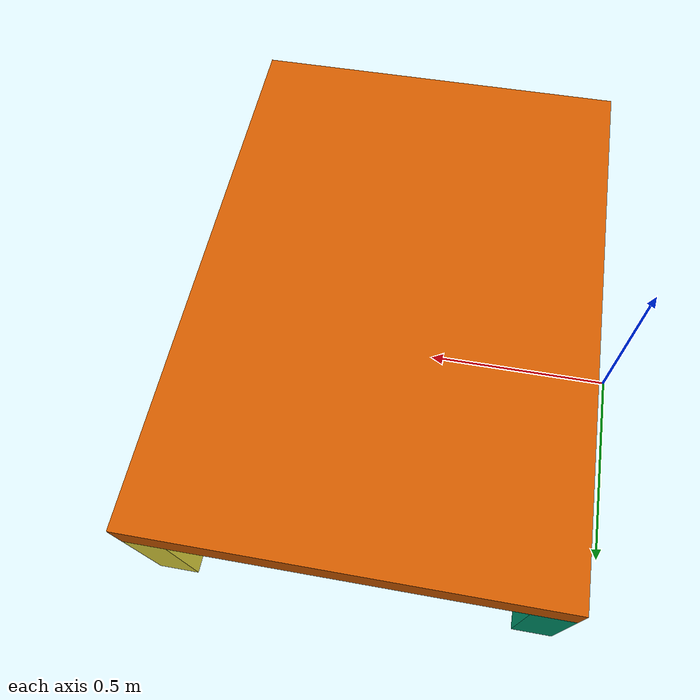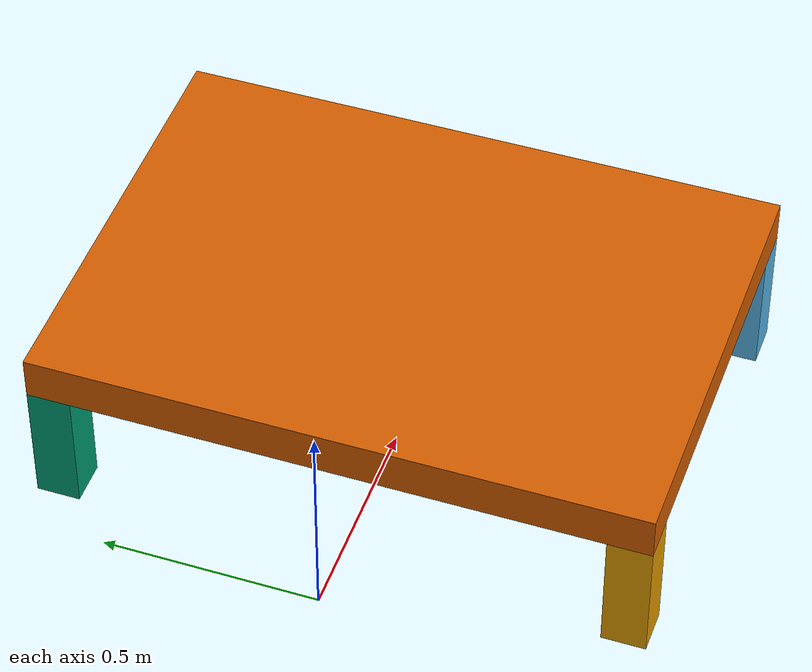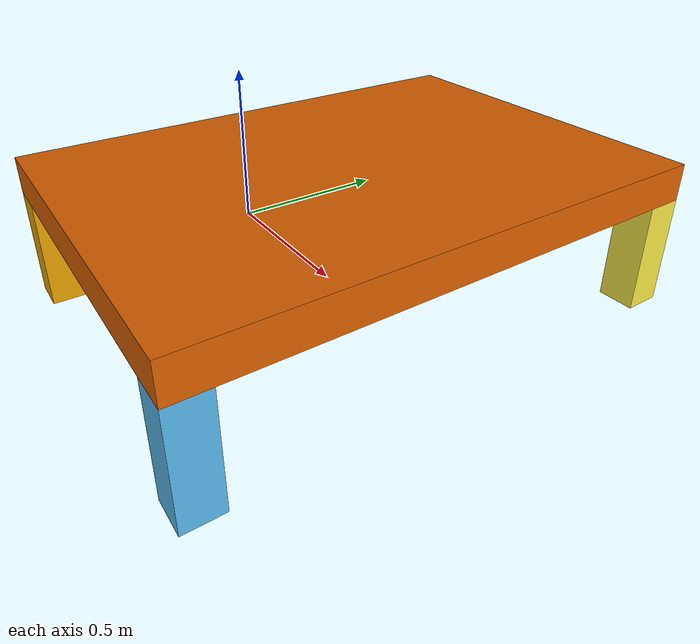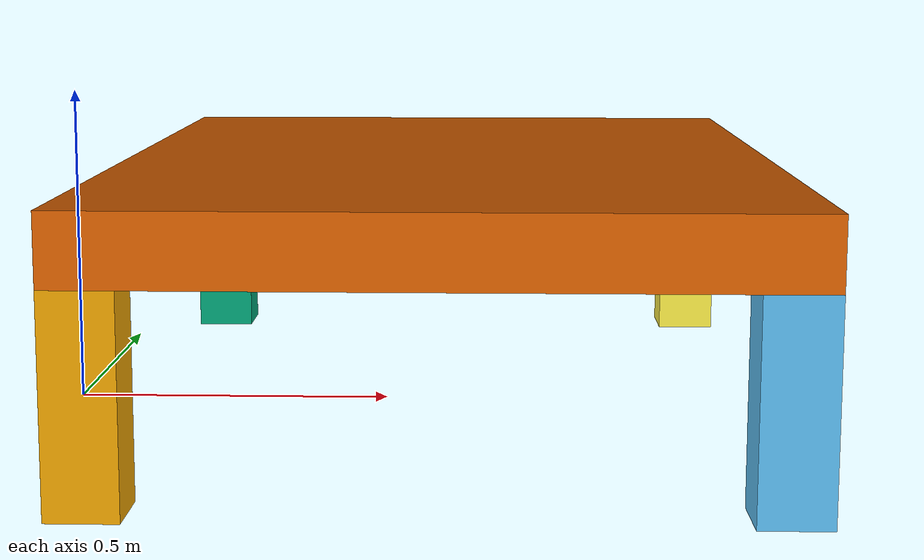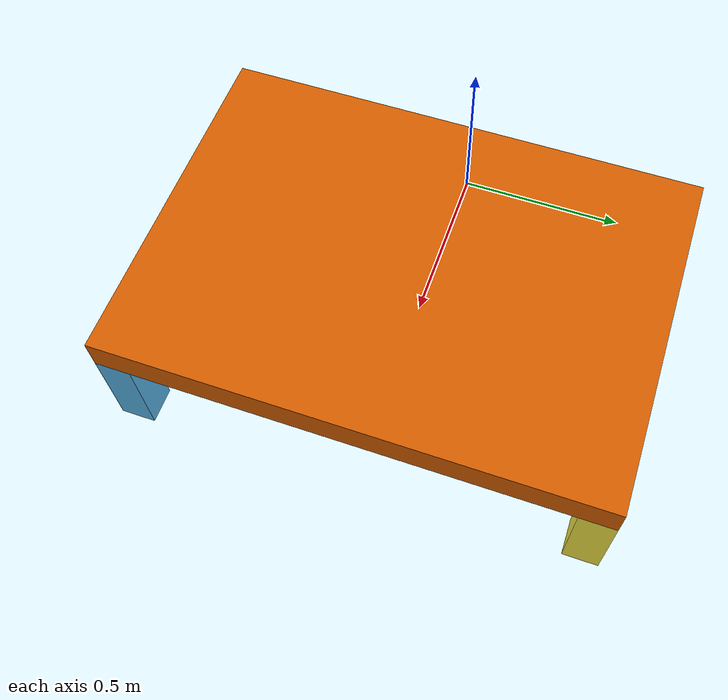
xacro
<?xml version="1.0"?>
<robot name="table" xmlns:xacro="http://ros.org/wiki/xacro">

    <!-- o_x is the position of the table of the table along x axis -->
    <xacro:property name="o_x" value="0.1" />
    <!-- o_y is the position of the table of the table along y axis -->
    <xacro:property name="o_y" value="-0.7" />
    <xacro:property name="table_height" value="0.1" />
    <!-- table_x is the width of the table along x axis -->
    <xacro:property name="table_x" value="1" />
    <!-- table_y is the width of the table along y axis -->
    <xacro:property name="table_y" value="1.4" />
    <xacro:property name="leg_height" value="0.3" />
    <xacro:property name="leg_x" value="0.1" />
    <xacro:property name="leg_y" value="0.1" />

    <xacro:macro name="default_inertial" params="mass">
    <inertial>
      <mass value="${mass}" />
      <inertia ixx="1.0" ixy="0.0" ixz="0.0" iyy="1.0" iyz="0.0" izz="1.0" />
    </inertial>
  </xacro:macro>

      <xacro:macro name="leg" params="prefix pos_x pos_y">
        <link name="${prefix}_leg">
          <visual>
            <geometry>
              <box size="${leg_x} ${leg_y} ${leg_height}"/>
            </geometry>
            <origin xyz="0 0 ${leg_height/2}" rpy="0 0 0"/>
          </visual>
          <collision>
            <geometry>
              <box size="${leg_x} ${leg_y} ${leg_height}"/>
            </geometry>
            <origin xyz="0 0 ${leg_height/2}" rpy="0 0 0"/>
          </collision>
          <xacro:default_inertial mass="10"/>
        </link>

        <joint name="world_to_${prefix}_leg" type="fixed">
          <parent link="world"/>
          <child link="${prefix}_leg"/>
          <origin xyz="${pos_x} ${pos_y} 0" />
        </joint>

      </xacro:macro>

      <xacro:macro name="place_legs" params="pos_x pos_y table_x table_y">
      <xacro:leg prefix="sw" pos_x="${pos_x+leg_x/2}" pos_y="${pos_y+leg_y/2}" />
    <xacro:leg prefix="se" pos_x="${pos_x+table_x-leg_x/2}" pos_y="${pos_y+leg_y/2}" />
    <xacro:leg prefix="nw" pos_x="${pos_x+leg_x/2}" pos_y="${pos_y+table_y-leg_y/2}" />
    <xacro:leg prefix="ne" pos_x="${pos_x+table_x-leg_x/2}" pos_y="${pos_y+table_y-leg_y/2}" />
</xacro:macro>

<xacro:place_legs pos_x="${o_x}" pos_y="${o_y}" table_x="${table_x}" table_y="${table_y}" />

<link name="world" />
<link name="table">
    <visual>
      <geometry>
        <box size="${table_x} ${table_y} ${table_height}"/>
      </geometry>
      <origin xyz="${table_x/2} ${table_y/2} ${table_height/2+leg_height}" rpy="0 0 0"/>
    </visual>
    <collision>
      <geometry>
        <box size="${table_x} ${table_y} ${table_height}"/>
      </geometry>
      <origin xyz="${table_x/2} ${table_y/2} ${table_height/2+leg_height}" rpy="0 0 0"/>
    </collision>
    <xacro:default_inertial mass="10"/>
  </link>

  <joint name="world_to_table" type="fixed">
    <parent link="world"/>
    <child link="table"/>
    <origin xyz="${o_x} ${o_y} 0" />
  </joint>

</robot>
